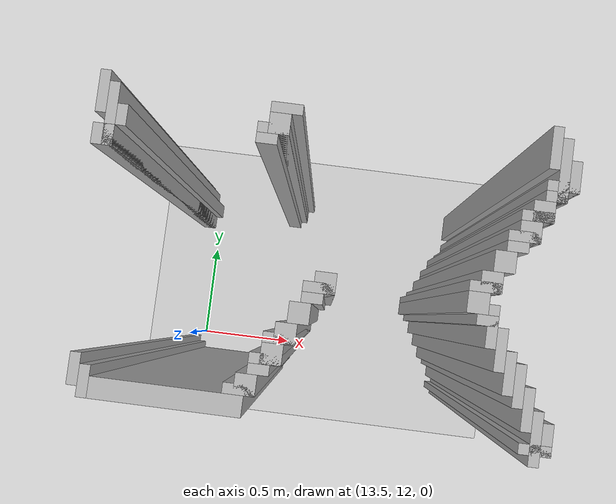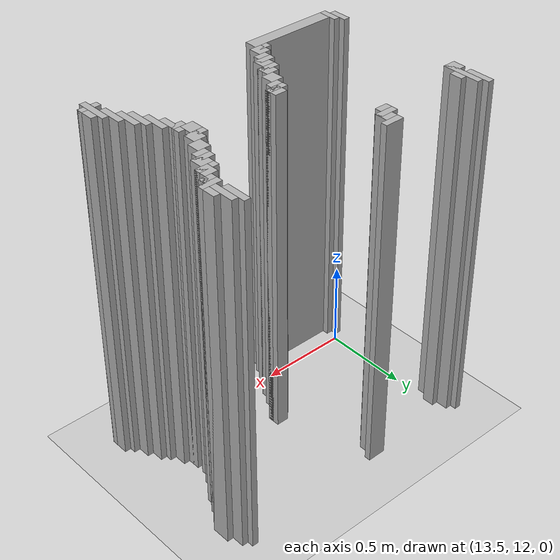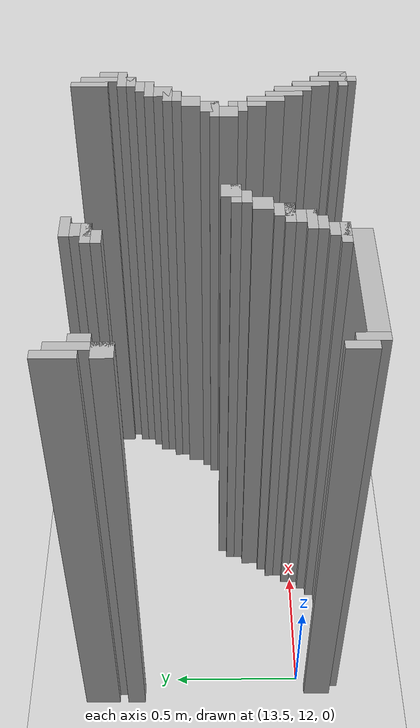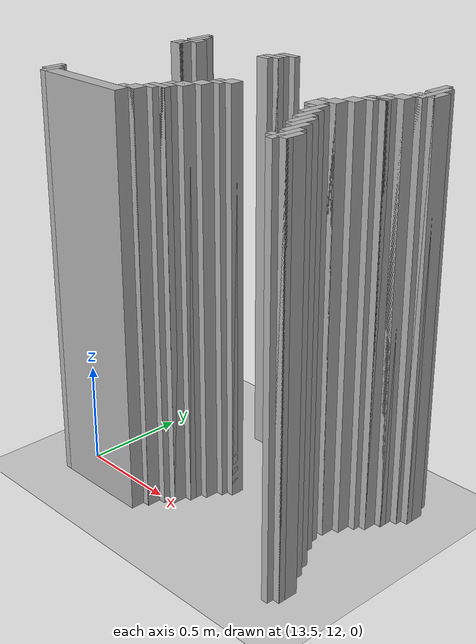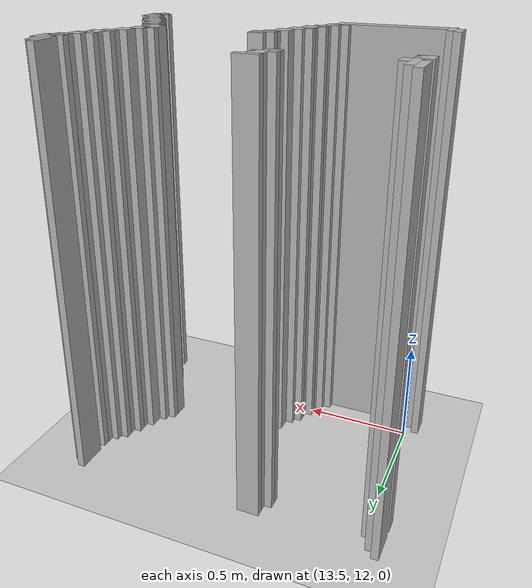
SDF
<sdf version="1.6">
 <world name="slam_world">
  <model name="ground_plane">
   <static>true</static>
   <link name="link">
    <collision name="collision">
     <geometry><plane><normal>0 0 1</normal><size>100 100</size></plane></geometry>
    </collision>
    <visual name="visual">
     <geometry><plane><normal>0 0 1</normal><size>100 100</size></plane></geometry>
     <material>
      <ambient>0.8 0.8 0.8 1</ambient>
      <diffuse>0.8 0.8 0.8 1</diffuse>
      <specular>0.8 0.8 0.8 1</specular>
     </material>
    </visual>
   </link>
  </model>
  <model name="wall_1479">
   <static>true</static>
   <pose>13.416473317865428 12.807424593967516 1.0 0 0 0</pose>
   <link name="link">
    <collision name="collision">
     <geometry><box><size>0.03480278422273782 0.13921113689095127 2.0</size></box></geometry>
    </collision>
    <visual name="visual">
     <geometry><box><size>0.03480278422273782 0.13921113689095127 2.0</size></box></geometry>
     <material><ambient>0.5 0.5 0.5 1</ambient><diffuse>0.7 0.7 0.7 1</diffuse></material>
    </visual>
   </link>
  </model>
  <model name="wall_1481">
   <static>true</static>
   <pose>14.878190255220417 12.807424593967516 1.0 0 0 0</pose>
   <link name="link">
    <collision name="collision">
     <geometry><box><size>0.03480278422273782 0.13921113689095127 2.0</size></box></geometry>
    </collision>
    <visual name="visual">
     <geometry><box><size>0.03480278422273782 0.13921113689095127 2.0</size></box></geometry>
     <material><ambient>0.5 0.5 0.5 1</ambient><diffuse>0.7 0.7 0.7 1</diffuse></material>
    </visual>
   </link>
  </model>
  <model name="wall_1494">
   <static>true</static>
   <pose>13.451276102088167 12.737819025522041 1.0 0 0 0</pose>
   <link name="link">
    <collision name="collision">
     <geometry><box><size>0.03480278422273782 0.2088167053364269 2.0</size></box></geometry>
    </collision>
    <visual name="visual">
     <geometry><box><size>0.03480278422273782 0.2088167053364269 2.0</size></box></geometry>
     <material><ambient>0.5 0.5 0.5 1</ambient><diffuse>0.7 0.7 0.7 1</diffuse></material>
    </visual>
   </link>
  </model>
  <model name="wall_1495">
   <static>true</static>
   <pose>14.008120649651971 12.824825986078885 1.0 0 0 0</pose>
   <link name="link">
    <collision name="collision">
     <geometry><box><size>0.10440835266821345 0.03480278422273782 2.0</size></box></geometry>
    </collision>
    <visual name="visual">
     <geometry><box><size>0.10440835266821345 0.03480278422273782 2.0</size></box></geometry>
     <material><ambient>0.5 0.5 0.5 1</ambient><diffuse>0.7 0.7 0.7 1</diffuse></material>
    </visual>
   </link>
  </model>
  <model name="wall_1496">
   <static>true</static>
   <pose>14.912993039443155 12.737819025522041 1.0 0 0 0</pose>
   <link name="link">
    <collision name="collision">
     <geometry><box><size>0.03480278422273782 0.2088167053364269 2.0</size></box></geometry>
    </collision>
    <visual name="visual">
     <geometry><box><size>0.03480278422273782 0.2088167053364269 2.0</size></box></geometry>
     <material><ambient>0.5 0.5 0.5 1</ambient><diffuse>0.7 0.7 0.7 1</diffuse></material>
    </visual>
   </link>
  </model>
  <model name="wall_1504">
   <static>true</static>
   <pose>13.990719257540603 12.772621809744779 1.0 0 0 0</pose>
   <link name="link">
    <collision name="collision">
     <geometry><box><size>0.06960556844547564 0.06960556844547564 2.0</size></box></geometry>
    </collision>
    <visual name="visual">
     <geometry><box><size>0.06960556844547564 0.06960556844547564 2.0</size></box></geometry>
     <material><ambient>0.5 0.5 0.5 1</ambient><diffuse>0.7 0.7 0.7 1</diffuse></material>
    </visual>
   </link>
  </model>
  <model name="wall_1517">
   <static>true</static>
   <pose>13.486078886310905 12.737819025522041 1.0 0 0 0</pose>
   <link name="link">
    <collision name="collision">
     <geometry><box><size>0.03480278422273782 0.06960556844547564 2.0</size></box></geometry>
    </collision>
    <visual name="visual">
     <geometry><box><size>0.03480278422273782 0.06960556844547564 2.0</size></box></geometry>
     <material><ambient>0.5 0.5 0.5 1</ambient><diffuse>0.7 0.7 0.7 1</diffuse></material>
    </visual>
   </link>
  </model>
  <model name="wall_1518">
   <static>true</static>
   <pose>13.973317865429234 12.75522041763341 1.0 0 0 0</pose>
   <link name="link">
    <collision name="collision">
     <geometry><box><size>0.10440835266821345 0.03480278422273782 2.0</size></box></geometry>
    </collision>
    <visual name="visual">
     <geometry><box><size>0.10440835266821345 0.03480278422273782 2.0</size></box></geometry>
     <material><ambient>0.5 0.5 0.5 1</ambient><diffuse>0.7 0.7 0.7 1</diffuse></material>
    </visual>
   </link>
  </model>
  <model name="wall_1519">
   <static>true</static>
   <pose>14.947795823665892 12.720417633410673 1.0 0 0 0</pose>
   <link name="link">
    <collision name="collision">
     <geometry><box><size>0.03480278422273782 0.10440835266821345 2.0</size></box></geometry>
    </collision>
    <visual name="visual">
     <geometry><box><size>0.03480278422273782 0.10440835266821345 2.0</size></box></geometry>
     <material><ambient>0.5 0.5 0.5 1</ambient><diffuse>0.7 0.7 0.7 1</diffuse></material>
    </visual>
   </link>
  </model>
  <model name="wall_1529">
   <static>true</static>
   <pose>13.955916473317865 12.720417633410673 1.0 0 0 0</pose>
   <link name="link">
    <collision name="collision">
     <geometry><box><size>0.06960556844547564 0.03480278422273782 2.0</size></box></geometry>
    </collision>
    <visual name="visual">
     <geometry><box><size>0.06960556844547564 0.03480278422273782 2.0</size></box></geometry>
     <material><ambient>0.5 0.5 0.5 1</ambient><diffuse>0.7 0.7 0.7 1</diffuse></material>
    </visual>
   </link>
  </model>
  <model name="wall_1541">
   <static>true</static>
   <pose>13.433874709976797 12.668213457076565 1.0 0 0 0</pose>
   <link name="link">
    <collision name="collision">
     <geometry><box><size>0.06960556844547564 0.06960556844547564 2.0</size></box></geometry>
    </collision>
    <visual name="visual">
     <geometry><box><size>0.06960556844547564 0.06960556844547564 2.0</size></box></geometry>
     <material><ambient>0.5 0.5 0.5 1</ambient><diffuse>0.7 0.7 0.7 1</diffuse></material>
    </visual>
   </link>
  </model>
  <model name="wall_1542">
   <static>true</static>
   <pose>14.912993039443155 12.685614849187935 1.0 0 0 0</pose>
   <link name="link">
    <collision name="collision">
     <geometry><box><size>0.10440835266821345 0.03480278422273782 2.0</size></box></geometry>
    </collision>
    <visual name="visual">
     <geometry><box><size>0.10440835266821345 0.03480278422273782 2.0</size></box></geometry>
     <material><ambient>0.5 0.5 0.5 1</ambient><diffuse>0.7 0.7 0.7 1</diffuse></material>
    </visual>
   </link>
  </model>
  <model name="wall_1554">
   <static>true</static>
   <pose>14.895591647331786 12.650812064965196 1.0 0 0 0</pose>
   <link name="link">
    <collision name="collision">
     <geometry><box><size>0.06960556844547564 0.03480278422273782 2.0</size></box></geometry>
    </collision>
    <visual name="visual">
     <geometry><box><size>0.06960556844547564 0.03480278422273782 2.0</size></box></geometry>
     <material><ambient>0.5 0.5 0.5 1</ambient><diffuse>0.7 0.7 0.7 1</diffuse></material>
    </visual>
   </link>
  </model>
  <model name="wall_1567">
   <static>true</static>
   <pose>14.860788863109049 12.59860788863109 1.0 0 0 0</pose>
   <link name="link">
    <collision name="collision">
     <geometry><box><size>0.06960556844547564 0.06960556844547564 2.0</size></box></geometry>
    </collision>
    <visual name="visual">
     <geometry><box><size>0.06960556844547564 0.06960556844547564 2.0</size></box></geometry>
     <material><ambient>0.5 0.5 0.5 1</ambient><diffuse>0.7 0.7 0.7 1</diffuse></material>
    </visual>
   </link>
  </model>
  <model name="wall_1580">
   <static>true</static>
   <pose>14.84338747099768 12.581206496519721 1.0 0 0 0</pose>
   <link name="link">
    <collision name="collision">
     <geometry><box><size>0.10440835266821345 0.03480278422273782 2.0</size></box></geometry>
    </collision>
    <visual name="visual">
     <geometry><box><size>0.10440835266821345 0.03480278422273782 2.0</size></box></geometry>
     <material><ambient>0.5 0.5 0.5 1</ambient><diffuse>0.7 0.7 0.7 1</diffuse></material>
    </visual>
   </link>
  </model>
  <model name="wall_1591">
   <static>true</static>
   <pose>14.825986078886311 12.529002320185615 1.0 0 0 0</pose>
   <link name="link">
    <collision name="collision">
     <geometry><box><size>0.06960556844547564 0.06960556844547564 2.0</size></box></geometry>
    </collision>
    <visual name="visual">
     <geometry><box><size>0.06960556844547564 0.06960556844547564 2.0</size></box></geometry>
     <material><ambient>0.5 0.5 0.5 1</ambient><diffuse>0.7 0.7 0.7 1</diffuse></material>
    </visual>
   </link>
  </model>
  <model name="wall_1604">
   <static>true</static>
   <pose>14.80858468677494 12.511600928074245 1.0 0 0 0</pose>
   <link name="link">
    <collision name="collision">
     <geometry><box><size>0.10440835266821345 0.03480278422273782 2.0</size></box></geometry>
    </collision>
    <visual name="visual">
     <geometry><box><size>0.10440835266821345 0.03480278422273782 2.0</size></box></geometry>
     <material><ambient>0.5 0.5 0.5 1</ambient><diffuse>0.7 0.7 0.7 1</diffuse></material>
    </visual>
   </link>
  </model>
  <model name="wall_1611">
   <static>true</static>
   <pose>14.791183294663572 12.476798143851507 1.0 0 0 0</pose>
   <link name="link">
    <collision name="collision">
     <geometry><box><size>0.06960556844547564 0.03480278422273782 2.0</size></box></geometry>
    </collision>
    <visual name="visual">
     <geometry><box><size>0.06960556844547564 0.03480278422273782 2.0</size></box></geometry>
     <material><ambient>0.5 0.5 0.5 1</ambient><diffuse>0.7 0.7 0.7 1</diffuse></material>
    </visual>
   </link>
  </model>
  <model name="wall_1624">
   <static>true</static>
   <pose>14.756380510440835 12.424593967517401 1.0 0 0 0</pose>
   <link name="link">
    <collision name="collision">
     <geometry><box><size>0.06960556844547564 0.06960556844547564 2.0</size></box></geometry>
    </collision>
    <visual name="visual">
     <geometry><box><size>0.06960556844547564 0.06960556844547564 2.0</size></box></geometry>
     <material><ambient>0.5 0.5 0.5 1</ambient><diffuse>0.7 0.7 0.7 1</diffuse></material>
    </visual>
   </link>
  </model>
  <model name="wall_1637">
   <static>true</static>
   <pose>14.721577726218097 12.354988399071924 1.0 0 0 0</pose>
   <link name="link">
    <collision name="collision">
     <geometry><box><size>0.06960556844547564 0.06960556844547564 2.0</size></box></geometry>
    </collision>
    <visual name="visual">
     <geometry><box><size>0.06960556844547564 0.06960556844547564 2.0</size></box></geometry>
     <material><ambient>0.5 0.5 0.5 1</ambient><diffuse>0.7 0.7 0.7 1</diffuse></material>
    </visual>
   </link>
  </model>
  <model name="wall_1649">
   <static>true</static>
   <pose>14.704176334106728 12.337587006960556 1.0 0 0 0</pose>
   <link name="link">
    <collision name="collision">
     <geometry><box><size>0.10440835266821345 0.03480278422273782 2.0</size></box></geometry>
    </collision>
    <visual name="visual">
     <geometry><box><size>0.10440835266821345 0.03480278422273782 2.0</size></box></geometry>
     <material><ambient>0.5 0.5 0.5 1</ambient><diffuse>0.7 0.7 0.7 1</diffuse></material>
    </visual>
   </link>
  </model>
  <model name="wall_1660">
   <static>true</static>
   <pose>14.199535962877029 12.28538283062645 1.0 0 0 0</pose>
   <link name="link">
    <collision name="collision">
     <geometry><box><size>0.06960556844547564 0.06960556844547564 2.0</size></box></geometry>
    </collision>
    <visual name="visual">
     <geometry><box><size>0.06960556844547564 0.06960556844547564 2.0</size></box></geometry>
     <material><ambient>0.5 0.5 0.5 1</ambient><diffuse>0.7 0.7 0.7 1</diffuse></material>
    </visual>
   </link>
  </model>
  <model name="wall_1661">
   <static>true</static>
   <pose>14.68677494199536 12.28538283062645 1.0 0 0 0</pose>
   <link name="link">
    <collision name="collision">
     <geometry><box><size>0.06960556844547564 0.06960556844547564 2.0</size></box></geometry>
    </collision>
    <visual name="visual">
     <geometry><box><size>0.06960556844547564 0.06960556844547564 2.0</size></box></geometry>
     <material><ambient>0.5 0.5 0.5 1</ambient><diffuse>0.7 0.7 0.7 1</diffuse></material>
    </visual>
   </link>
  </model>
  <model name="wall_1679">
   <static>true</static>
   <pose>14.18213457076566 12.267981438515081 1.0 0 0 0</pose>
   <link name="link">
    <collision name="collision">
     <geometry><box><size>0.10440835266821345 0.03480278422273782 2.0</size></box></geometry>
    </collision>
    <visual name="visual">
     <geometry><box><size>0.10440835266821345 0.03480278422273782 2.0</size></box></geometry>
     <material><ambient>0.5 0.5 0.5 1</ambient><diffuse>0.7 0.7 0.7 1</diffuse></material>
    </visual>
   </link>
  </model>
  <model name="wall_1680">
   <static>true</static>
   <pose>14.738979118329466 12.215777262180975 1.0 0 0 0</pose>
   <link name="link">
    <collision name="collision">
     <geometry><box><size>0.03480278422273782 0.13921113689095127 2.0</size></box></geometry>
    </collision>
    <visual name="visual">
     <geometry><box><size>0.03480278422273782 0.13921113689095127 2.0</size></box></geometry>
     <material><ambient>0.5 0.5 0.5 1</ambient><diffuse>0.7 0.7 0.7 1</diffuse></material>
    </visual>
   </link>
  </model>
  <model name="wall_1693">
   <static>true</static>
   <pose>14.164733178654291 12.233178654292344 1.0 0 0 0</pose>
   <link name="link">
    <collision name="collision">
     <geometry><box><size>0.06960556844547564 0.03480278422273782 2.0</size></box></geometry>
    </collision>
    <visual name="visual">
     <geometry><box><size>0.06960556844547564 0.03480278422273782 2.0</size></box></geometry>
     <material><ambient>0.5 0.5 0.5 1</ambient><diffuse>0.7 0.7 0.7 1</diffuse></material>
    </visual>
   </link>
  </model>
  <model name="wall_1694">
   <static>true</static>
   <pose>14.721577726218097 12.233178654292344 1.0 0 0 0</pose>
   <link name="link">
    <collision name="collision">
     <geometry><box><size>0.06960556844547564 0.03480278422273782 2.0</size></box></geometry>
    </collision>
    <visual name="visual">
     <geometry><box><size>0.06960556844547564 0.03480278422273782 2.0</size></box></geometry>
     <material><ambient>0.5 0.5 0.5 1</ambient><diffuse>0.7 0.7 0.7 1</diffuse></material>
    </visual>
   </link>
  </model>
  <model name="wall_1707">
   <static>true</static>
   <pose>14.129930394431554 12.180974477958236 1.0 0 0 0</pose>
   <link name="link">
    <collision name="collision">
     <geometry><box><size>0.06960556844547564 0.06960556844547564 2.0</size></box></geometry>
    </collision>
    <visual name="visual">
     <geometry><box><size>0.06960556844547564 0.06960556844547564 2.0</size></box></geometry>
     <material><ambient>0.5 0.5 0.5 1</ambient><diffuse>0.7 0.7 0.7 1</diffuse></material>
    </visual>
   </link>
  </model>
  <model name="wall_1708">
   <static>true</static>
   <pose>14.773781902552203 12.146171693735498 1.0 0 0 0</pose>
   <link name="link">
    <collision name="collision">
     <geometry><box><size>0.03480278422273782 0.13921113689095127 2.0</size></box></geometry>
    </collision>
    <visual name="visual">
     <geometry><box><size>0.03480278422273782 0.13921113689095127 2.0</size></box></geometry>
     <material><ambient>0.5 0.5 0.5 1</ambient><diffuse>0.7 0.7 0.7 1</diffuse></material>
    </visual>
   </link>
  </model>
  <model name="wall_1721">
   <static>true</static>
   <pose>14.095127610208817 12.11136890951276 1.0 0 0 0</pose>
   <link name="link">
    <collision name="collision">
     <geometry><box><size>0.06960556844547564 0.06960556844547564 2.0</size></box></geometry>
    </collision>
    <visual name="visual">
     <geometry><box><size>0.06960556844547564 0.06960556844547564 2.0</size></box></geometry>
     <material><ambient>0.5 0.5 0.5 1</ambient><diffuse>0.7 0.7 0.7 1</diffuse></material>
    </visual>
   </link>
  </model>
  <model name="wall_1722">
   <static>true</static>
   <pose>14.80858468677494 12.076566125290023 1.0 0 0 0</pose>
   <link name="link">
    <collision name="collision">
     <geometry><box><size>0.03480278422273782 0.13921113689095127 2.0</size></box></geometry>
    </collision>
    <visual name="visual">
     <geometry><box><size>0.03480278422273782 0.13921113689095127 2.0</size></box></geometry>
     <material><ambient>0.5 0.5 0.5 1</ambient><diffuse>0.7 0.7 0.7 1</diffuse></material>
    </visual>
   </link>
  </model>
  <model name="wall_1735">
   <static>true</static>
   <pose>14.077726218097448 12.093967517401392 1.0 0 0 0</pose>
   <link name="link">
    <collision name="collision">
     <geometry><box><size>0.10440835266821345 0.03480278422273782 2.0</size></box></geometry>
    </collision>
    <visual name="visual">
     <geometry><box><size>0.10440835266821345 0.03480278422273782 2.0</size></box></geometry>
     <material><ambient>0.5 0.5 0.5 1</ambient><diffuse>0.7 0.7 0.7 1</diffuse></material>
    </visual>
   </link>
  </model>
  <model name="wall_1736">
   <static>true</static>
   <pose>14.84338747099768 12.041763341067284 1.0 0 0 0</pose>
   <link name="link">
    <collision name="collision">
     <geometry><box><size>0.03480278422273782 0.13921113689095127 2.0</size></box></geometry>
    </collision>
    <visual name="visual">
     <geometry><box><size>0.03480278422273782 0.13921113689095127 2.0</size></box></geometry>
     <material><ambient>0.5 0.5 0.5 1</ambient><diffuse>0.7 0.7 0.7 1</diffuse></material>
    </visual>
   </link>
  </model>
  <model name="wall_1746">
   <static>true</static>
   <pose>14.06032482598608 12.041763341067284 1.0 0 0 0</pose>
   <link name="link">
    <collision name="collision">
     <geometry><box><size>0.06960556844547564 0.06960556844547564 2.0</size></box></geometry>
    </collision>
    <visual name="visual">
     <geometry><box><size>0.06960556844547564 0.06960556844547564 2.0</size></box></geometry>
     <material><ambient>0.5 0.5 0.5 1</ambient><diffuse>0.7 0.7 0.7 1</diffuse></material>
    </visual>
   </link>
  </model>
  <model name="wall_1759">
   <static>true</static>
   <pose>14.042923433874709 12.024361948955915 1.0 0 0 0</pose>
   <link name="link">
    <collision name="collision">
     <geometry><box><size>0.10440835266821345 0.03480278422273782 2.0</size></box></geometry>
    </collision>
    <visual name="visual">
     <geometry><box><size>0.10440835266821345 0.03480278422273782 2.0</size></box></geometry>
     <material><ambient>0.5 0.5 0.5 1</ambient><diffuse>0.7 0.7 0.7 1</diffuse></material>
    </visual>
   </link>
  </model>
  <model name="wall_1760">
   <static>true</static>
   <pose>14.878190255220417 11.97215777262181 1.0 0 0 0</pose>
   <link name="link">
    <collision name="collision">
     <geometry><box><size>0.03480278422273782 0.13921113689095127 2.0</size></box></geometry>
    </collision>
    <visual name="visual">
     <geometry><box><size>0.03480278422273782 0.13921113689095127 2.0</size></box></geometry>
     <material><ambient>0.5 0.5 0.5 1</ambient><diffuse>0.7 0.7 0.7 1</diffuse></material>
    </visual>
   </link>
  </model>
  <model name="wall_1768">
   <static>true</static>
   <pose>14.02552204176334 11.989559164733178 1.0 0 0 0</pose>
   <link name="link">
    <collision name="collision">
     <geometry><box><size>0.06960556844547564 0.03480278422273782 2.0</size></box></geometry>
    </collision>
    <visual name="visual">
     <geometry><box><size>0.06960556844547564 0.03480278422273782 2.0</size></box></geometry>
     <material><ambient>0.5 0.5 0.5 1</ambient><diffuse>0.7 0.7 0.7 1</diffuse></material>
    </visual>
   </link>
  </model>
  <model name="wall_1780">
   <static>true</static>
   <pose>13.451276102088167 11.919953596287703 1.0 0 0 0</pose>
   <link name="link">
    <collision name="collision">
     <geometry><box><size>0.03480278422273782 0.10440835266821345 2.0</size></box></geometry>
    </collision>
    <visual name="visual">
     <geometry><box><size>0.03480278422273782 0.10440835266821345 2.0</size></box></geometry>
     <material><ambient>0.5 0.5 0.5 1</ambient><diffuse>0.7 0.7 0.7 1</diffuse></material>
    </visual>
   </link>
  </model>
  <model name="wall_1781">
   <static>true</static>
   <pose>13.990719257540603 11.937354988399072 1.0 0 0 0</pose>
   <link name="link">
    <collision name="collision">
     <geometry><box><size>0.06960556844547564 0.06960556844547564 2.0</size></box></geometry>
    </collision>
    <visual name="visual">
     <geometry><box><size>0.06960556844547564 0.06960556844547564 2.0</size></box></geometry>
     <material><ambient>0.5 0.5 0.5 1</ambient><diffuse>0.7 0.7 0.7 1</diffuse></material>
    </visual>
   </link>
  </model>
  <model name="wall_1782">
   <static>true</static>
   <pose>14.912993039443155 11.885150812064964 1.0 0 0 0</pose>
   <link name="link">
    <collision name="collision">
     <geometry><box><size>0.03480278422273782 0.17401392111368907 2.0</size></box></geometry>
    </collision>
    <visual name="visual">
     <geometry><box><size>0.03480278422273782 0.17401392111368907 2.0</size></box></geometry>
     <material><ambient>0.5 0.5 0.5 1</ambient><diffuse>0.7 0.7 0.7 1</diffuse></material>
    </visual>
   </link>
  </model>
  <model name="wall_1794">
   <static>true</static>
   <pose>13.486078886310905 11.885150812064964 1.0 0 0 0</pose>
   <link name="link">
    <collision name="collision">
     <geometry><box><size>0.03480278422273782 0.10440835266821345 2.0</size></box></geometry>
    </collision>
    <visual name="visual">
     <geometry><box><size>0.03480278422273782 0.10440835266821345 2.0</size></box></geometry>
     <material><ambient>0.5 0.5 0.5 1</ambient><diffuse>0.7 0.7 0.7 1</diffuse></material>
    </visual>
   </link>
  </model>
  <model name="wall_1795">
   <static>true</static>
   <pose>13.973317865429234 11.919953596287703 1.0 0 0 0</pose>
   <link name="link">
    <collision name="collision">
     <geometry><box><size>0.10440835266821345 0.03480278422273782 2.0</size></box></geometry>
    </collision>
    <visual name="visual">
     <geometry><box><size>0.10440835266821345 0.03480278422273782 2.0</size></box></geometry>
     <material><ambient>0.5 0.5 0.5 1</ambient><diffuse>0.7 0.7 0.7 1</diffuse></material>
    </visual>
   </link>
  </model>
  <model name="wall_1796">
   <static>true</static>
   <pose>14.947795823665892 11.885150812064964 1.0 0 0 0</pose>
   <link name="link">
    <collision name="collision">
     <geometry><box><size>0.03480278422273782 0.10440835266821345 2.0</size></box></geometry>
    </collision>
    <visual name="visual">
     <geometry><box><size>0.03480278422273782 0.10440835266821345 2.0</size></box></geometry>
     <material><ambient>0.5 0.5 0.5 1</ambient><diffuse>0.7 0.7 0.7 1</diffuse></material>
    </visual>
   </link>
  </model>
  <model name="wall_1807">
   <static>true</static>
   <pose>13.747099767981437 11.867749419953595 1.0 0 0 0</pose>
   <link name="link">
    <collision name="collision">
     <geometry><box><size>0.4872389791183295 0.06960556844547564 2.0</size></box></geometry>
    </collision>
    <visual name="visual">
     <geometry><box><size>0.4872389791183295 0.06960556844547564 2.0</size></box></geometry>
     <material><ambient>0.5 0.5 0.5 1</ambient><diffuse>0.7 0.7 0.7 1</diffuse></material>
    </visual>
   </link>
  </model>
  <model name="wall_1820">
   <static>true</static>
   <pose>14.912993039443155 11.850348027842227 1.0 0 0 0</pose>
   <link name="link">
    <collision name="collision">
     <geometry><box><size>0.10440835266821345 0.03480278422273782 2.0</size></box></geometry>
    </collision>
    <visual name="visual">
     <geometry><box><size>0.10440835266821345 0.03480278422273782 2.0</size></box></geometry>
     <material><ambient>0.5 0.5 0.5 1</ambient><diffuse>0.7 0.7 0.7 1</diffuse></material>
    </visual>
   </link>
  </model>
 </world>
</sdf>
